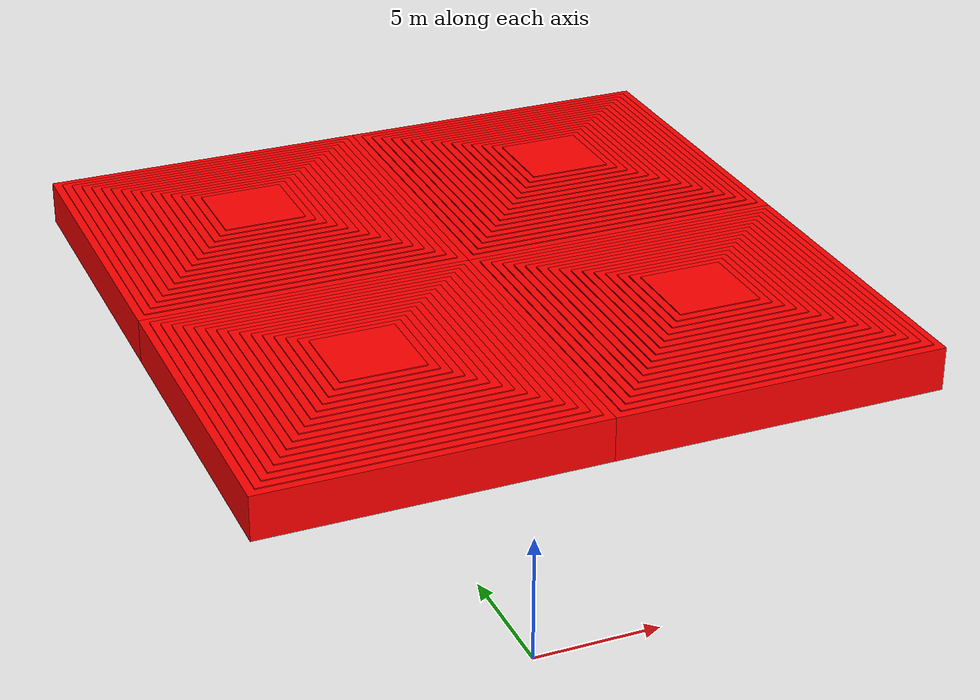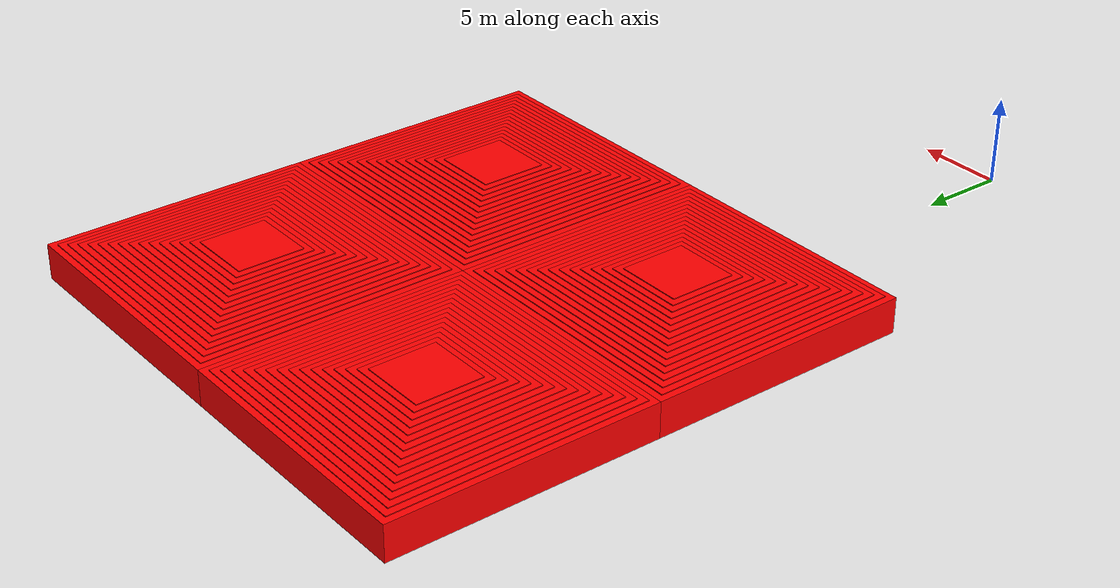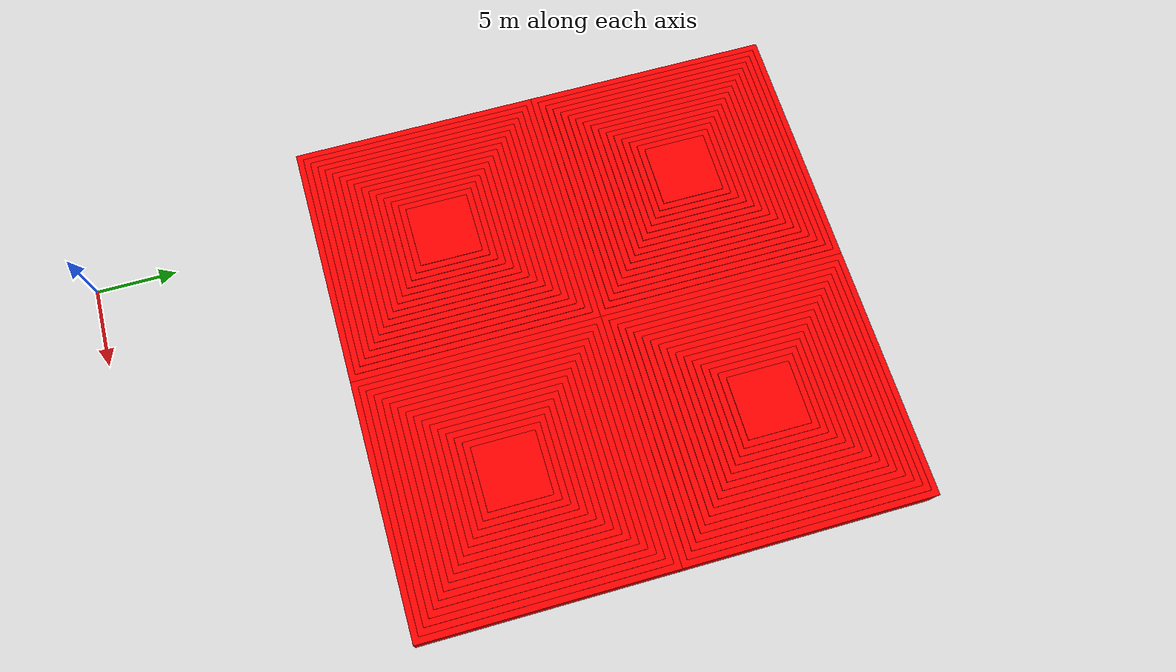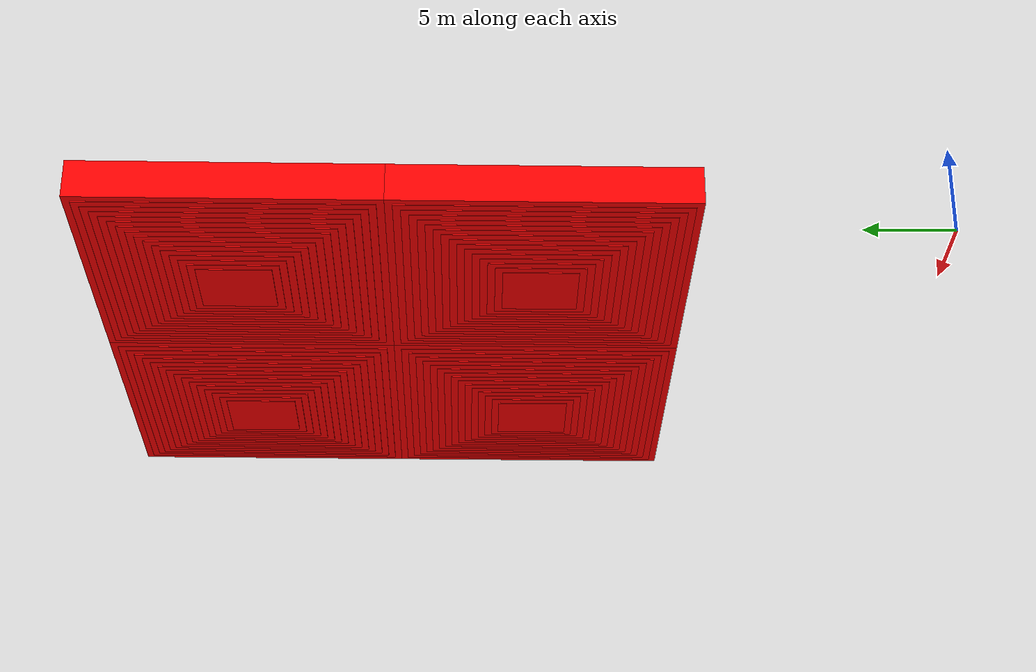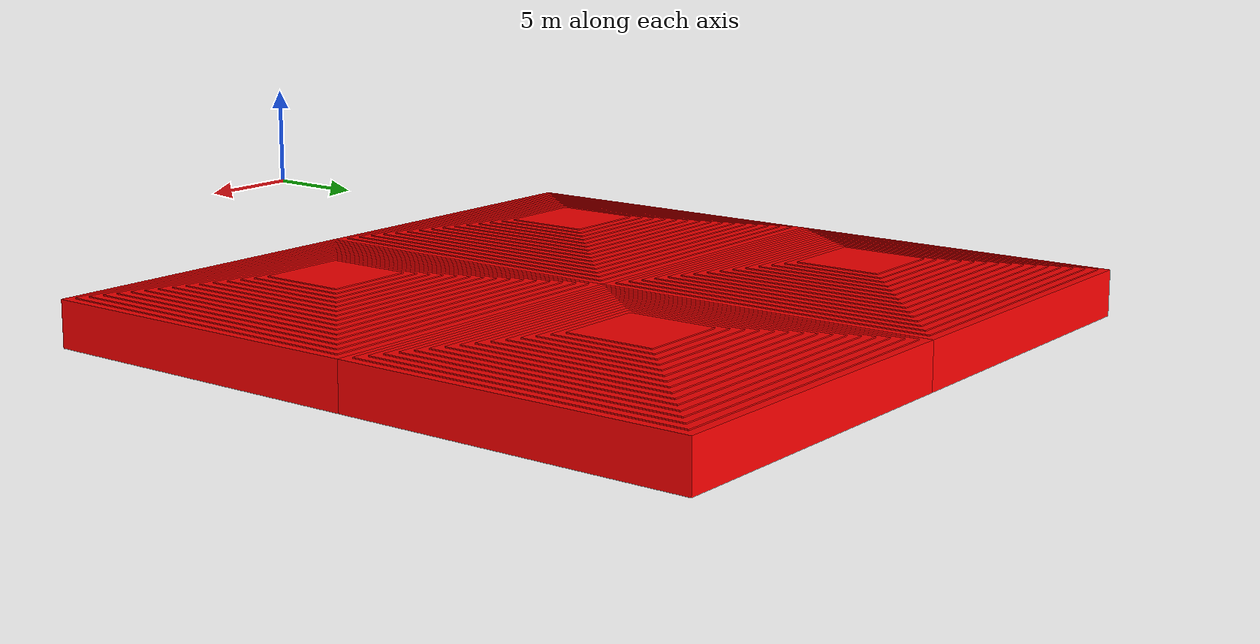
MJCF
<mujoco model="random_box_terrain">
    <compiler angle="degree" coordinate="local"/>
    <option timestep="0.01" gravity="0 0 -9.81" integrator="RK4"/>

    <asset>
        <texture type="2d" name="Plastic006_color"      file="../../textures/Plastic006_2K-PNG/Plastic006_2K-PNG_Color.png"/>
        <texture type="2d" name="Plastic006_roughness"  file="../../textures/Plastic006_2K-PNG/Plastic006_2K-PNG_Roughness.png"/>
        <texture type="2d" name="Plastic006_normal"     file="../../textures/Plastic006_2K-PNG/Plastic006_2K-PNG_NormalDX.png"/>

        <material name="pbr_plastic_black" metallic ="0.05" roughness="1.0" rgba="1 0 0 1.0">
        <layer role="rgb"        texture="Plastic006_color"/>
        <layer role="normal"     texture="Plastic006_normal"/>
        <layer role="roughness"  texture="Plastic006_roughness"/>
        </material>

        <texture type="2d" name="Plastic013A_color"      file="../../textures/Plastic013A_2K-PNG/Plastic013A_2K-PNG_Color.png"/>
        <texture type="2d" name="Plastic013A_roughness"  file="../../textures/Plastic013A_2K-PNG/Plastic013A_2K-PNG_Roughness.png"/>
        <texture type="2d" name="Plastic013A_normal"     file="../../textures/Plastic013A_2K-PNG/Plastic013A_2K-PNG_NormalDX.png"/>

        <material name="pbr_plastic_white" metallic ="0.05" roughness="1.0" rgba="1 0 0 1.0">
        <layer role="rgb"        texture="Plastic013A_color"/>
        <layer role="normal"     texture="Plastic013A_normal"/>
        <layer role="roughness"  texture="Plastic013A_roughness"/>
        </material>

        <texture type="2d" name="Plastic010_color"      file="../../textures/Plastic010_2K-PNG/Plastic010_2K-PNG_Color.png"/>
        <texture type="2d" name="Plastic010_roughness"  file="../../textures/Plastic010_2K-PNG/Plastic010_2K-PNG_Roughness.png"/>
        <texture type="2d" name="Plastic010_normal"     file="../../textures/Plastic010_2K-PNG/Plastic010_2K-PNG_NormalDX.png"/>

        <material name="pbr_plastic_gray" metallic ="0.05" roughness="1.0" rgba="1 0 0 1.0">
        <layer role="rgb"        texture="Plastic010_color"/>
        <layer role="normal"     texture="Plastic010_normal"/>
        <layer role="roughness"  texture="Plastic010_roughness"/>
        </material>
    </asset>
    <worldbody>
        <body name="offset" pos="10 30 0">
            <body name="terrain" pos="0 0 0.0">

                <geom type="box" pos="-8.0 -8.0 -1.0" size="8.0 8.0  1.05"   material="pbr_plastic_gray"/>
                <geom type="box" pos="-8.0 -8.0 -1.0" size="7.6 7.6  1.10"   material="pbr_plastic_white"/>
                <geom type="box" pos="-8.0 -8.0 -1.0" size="7.2 7.2  1.15"   material="pbr_plastic_gray"/>
                <geom type="box" pos="-8.0 -8.0 -1.0" size="6.8 6.8  1.20"   material="pbr_plastic_white"/>
                <geom type="box" pos="-8.0 -8.0 -1.0" size="6.4 6.4  1.25"   material="pbr_plastic_gray"/>
                <geom type="box" pos="-8.0 -8.0 -1.0" size="6.0 6.0  1.30"   material="pbr_plastic_white"/>
                <geom type="box" pos="-8.0 -8.0 -1.0" size="5.6 5.6  1.35"   material="pbr_plastic_gray"/>
                <geom type="box" pos="-8.0 -8.0 -1.0" size="5.2 5.2  1.40"   material="pbr_plastic_white"/>
                <geom type="box" pos="-8.0 -8.0 -1.0" size="4.8 4.8  1.45"   material="pbr_plastic_gray"/>
                <geom type="box" pos="-8.0 -8.0 -1.0" size="4.4 4.4  1.50"   material="pbr_plastic_white"/>
                <geom type="box" pos="-8.0 -8.0 -1.0" size="4.0 4.0  1.55"   material="pbr_plastic_gray"/>
                <geom type="box" pos="-8.0 -8.0 -1.0" size="3.6 3.6  1.60"   material="pbr_plastic_white"/>
                <geom type="box" pos="-8.0 -8.0 -1.0" size="3.2 3.2  1.65"   material="pbr_plastic_gray"/>
                <geom type="box" pos="-8.0 -8.0 -1.0" size="2.8 2.8  1.70"   material="pbr_plastic_white"/>
                <geom type="box" pos="-8.0 -8.0 -1.0" size="2.4 2.4  1.75"   material="pbr_plastic_gray"/>
                <geom type="box" pos="-8.0 -8.0 -1.0" size="2.0 2.0  1.80"   material="pbr_plastic_white"/>

                <geom type="box" pos="8.0 -8.0 -1.0" size="8.0 8.0  1.05"   material="pbr_plastic_gray"/>
                <geom type="box" pos="8.0 -8.0 -1.0" size="7.6 7.6  1.10"   material="pbr_plastic_white"/>
                <geom type="box" pos="8.0 -8.0 -1.0" size="7.2 7.2  1.15"   material="pbr_plastic_gray"/>
                <geom type="box" pos="8.0 -8.0 -1.0" size="6.8 6.8  1.20"   material="pbr_plastic_white"/>
                <geom type="box" pos="8.0 -8.0 -1.0" size="6.4 6.4  1.25"   material="pbr_plastic_gray"/>
                <geom type="box" pos="8.0 -8.0 -1.0" size="6.0 6.0  1.30"   material="pbr_plastic_white"/>
                <geom type="box" pos="8.0 -8.0 -1.0" size="5.6 5.6  1.35"   material="pbr_plastic_gray"/>
                <geom type="box" pos="8.0 -8.0 -1.0" size="5.2 5.2  1.40"   material="pbr_plastic_white"/>
                <geom type="box" pos="8.0 -8.0 -1.0" size="4.8 4.8  1.45"   material="pbr_plastic_gray"/>
                <geom type="box" pos="8.0 -8.0 -1.0" size="4.4 4.4  1.50"   material="pbr_plastic_white"/>
                <geom type="box" pos="8.0 -8.0 -1.0" size="4.0 4.0  1.55"   material="pbr_plastic_gray"/>
                <geom type="box" pos="8.0 -8.0 -1.0" size="3.6 3.6  1.60"   material="pbr_plastic_white"/>
                <geom type="box" pos="8.0 -8.0 -1.0" size="3.2 3.2  1.65"   material="pbr_plastic_gray"/>
                <geom type="box" pos="8.0 -8.0 -1.0" size="2.8 2.8  1.70"   material="pbr_plastic_white"/>
                <geom type="box" pos="8.0 -8.0 -1.0" size="2.4 2.4  1.75"   material="pbr_plastic_gray"/>
                <geom type="box" pos="8.0 -8.0 -1.0" size="2.0 2.0  1.80"   material="pbr_plastic_white"/>

                <geom type="box" pos="-8.0 8.0 -1.0" size="8.0 8.0  1.05"   material="pbr_plastic_gray"/>
                <geom type="box" pos="-8.0 8.0 -1.0" size="7.6 7.6  1.10"   material="pbr_plastic_white"/>
                <geom type="box" pos="-8.0 8.0 -1.0" size="7.2 7.2  1.15"   material="pbr_plastic_gray"/>
                <geom type="box" pos="-8.0 8.0 -1.0" size="6.8 6.8  1.20"   material="pbr_plastic_white"/>
                <geom type="box" pos="-8.0 8.0 -1.0" size="6.4 6.4  1.25"   material="pbr_plastic_gray"/>
                <geom type="box" pos="-8.0 8.0 -1.0" size="6.0 6.0  1.30"   material="pbr_plastic_white"/>
                <geom type="box" pos="-8.0 8.0 -1.0" size="5.6 5.6  1.35"   material="pbr_plastic_gray"/>
                <geom type="box" pos="-8.0 8.0 -1.0" size="5.2 5.2  1.40"   material="pbr_plastic_white"/>
                <geom type="box" pos="-8.0 8.0 -1.0" size="4.8 4.8  1.45"   material="pbr_plastic_gray"/>
                <geom type="box" pos="-8.0 8.0 -1.0" size="4.4 4.4  1.50"   material="pbr_plastic_white"/>
                <geom type="box" pos="-8.0 8.0 -1.0" size="4.0 4.0  1.55"   material="pbr_plastic_gray"/>
                <geom type="box" pos="-8.0 8.0 -1.0" size="3.6 3.6  1.60"   material="pbr_plastic_white"/>
                <geom type="box" pos="-8.0 8.0 -1.0" size="3.2 3.2  1.65"   material="pbr_plastic_gray"/>
                <geom type="box" pos="-8.0 8.0 -1.0" size="2.8 2.8  1.70"   material="pbr_plastic_white"/>
                <geom type="box" pos="-8.0 8.0 -1.0" size="2.4 2.4  1.75"   material="pbr_plastic_gray"/>
                <geom type="box" pos="-8.0 8.0 -1.0" size="2.0 2.0  1.80"   material="pbr_plastic_white"/>

                <geom type="box" pos="8.0 8.0 -1.0" size="8.0 8.0  1.05"   material="pbr_plastic_gray"/>
                <geom type="box" pos="8.0 8.0 -1.0" size="7.6 7.6  1.10"   material="pbr_plastic_white"/>
                <geom type="box" pos="8.0 8.0 -1.0" size="7.2 7.2  1.15"   material="pbr_plastic_gray"/>
                <geom type="box" pos="8.0 8.0 -1.0" size="6.8 6.8  1.20"   material="pbr_plastic_white"/>
                <geom type="box" pos="8.0 8.0 -1.0" size="6.4 6.4  1.25"   material="pbr_plastic_gray"/>
                <geom type="box" pos="8.0 8.0 -1.0" size="6.0 6.0  1.30"   material="pbr_plastic_white"/>
                <geom type="box" pos="8.0 8.0 -1.0" size="5.6 5.6  1.35"   material="pbr_plastic_gray"/>
                <geom type="box" pos="8.0 8.0 -1.0" size="5.2 5.2  1.40"   material="pbr_plastic_white"/>
                <geom type="box" pos="8.0 8.0 -1.0" size="4.8 4.8  1.45"   material="pbr_plastic_gray"/>
                <geom type="box" pos="8.0 8.0 -1.0" size="4.4 4.4  1.50"   material="pbr_plastic_white"/>
                <geom type="box" pos="8.0 8.0 -1.0" size="4.0 4.0  1.55"   material="pbr_plastic_gray"/>
                <geom type="box" pos="8.0 8.0 -1.0" size="3.6 3.6  1.60"   material="pbr_plastic_white"/>
                <geom type="box" pos="8.0 8.0 -1.0" size="3.2 3.2  1.65"   material="pbr_plastic_gray"/>
                <geom type="box" pos="8.0 8.0 -1.0" size="2.8 2.8  1.70"   material="pbr_plastic_white"/>
                <geom type="box" pos="8.0 8.0 -1.0" size="2.4 2.4  1.75"   material="pbr_plastic_gray"/>
                <geom type="box" pos="8.0 8.0 -1.0" size="2.0 2.0  1.80"   material="pbr_plastic_white"/>

            </body>
        </body>
    </worldbody>

    <actuator>
        <!-- 在这里你可以定义一些控制器 -->
    </actuator>

</mujoco>
